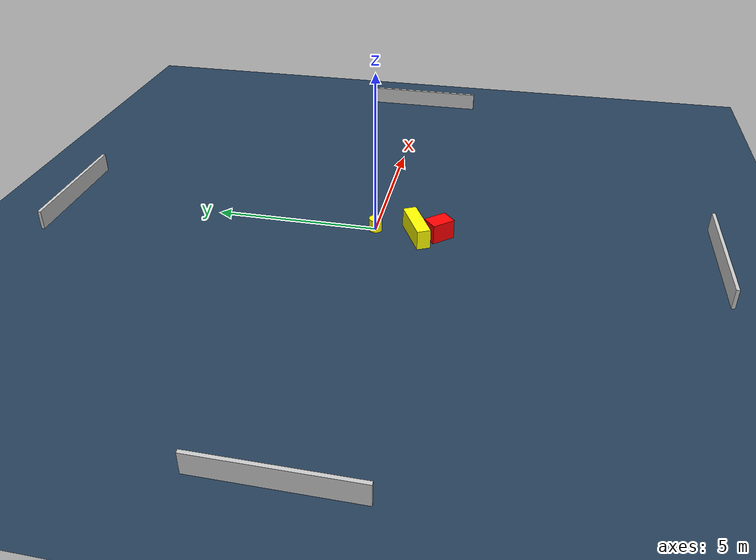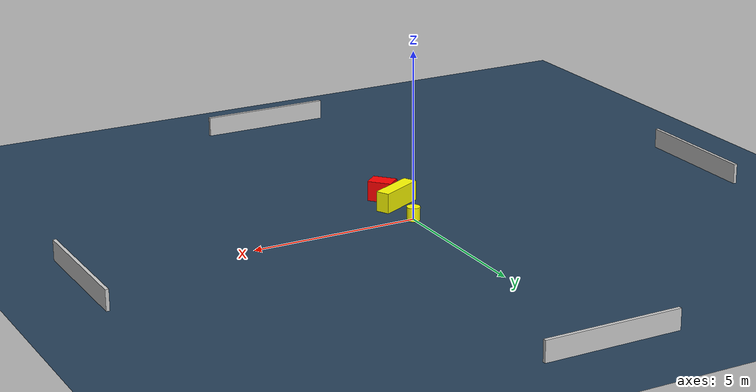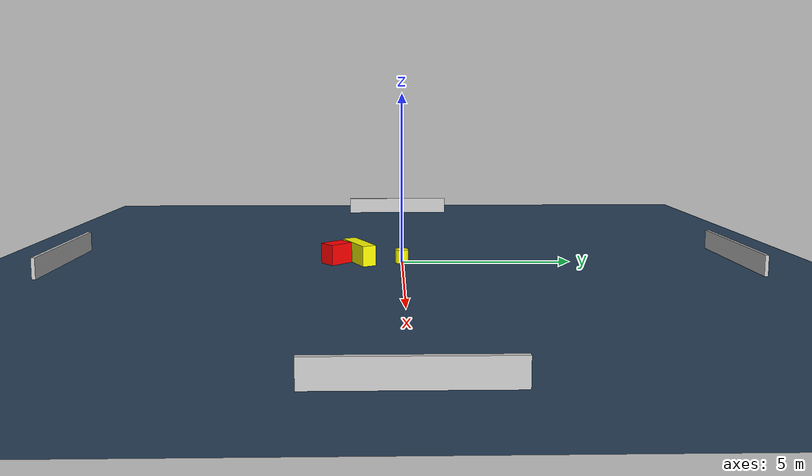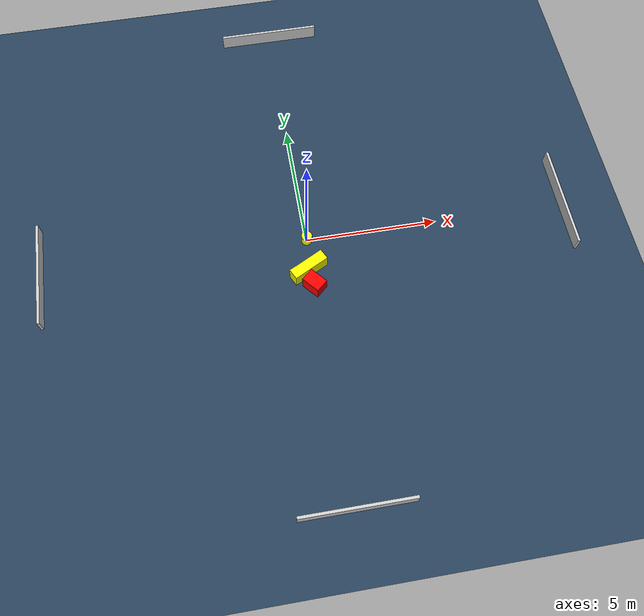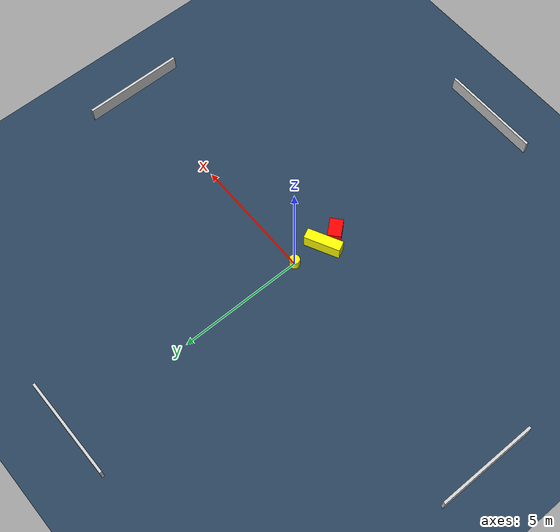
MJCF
<?xml version="1.0" ?>
<mujoco model="generated_environment">
  <option timestep="0.01" integrator="RK4" cone="elliptic"/>
  <default>
    <geom density="1"/>
  </default>
  <asset>
    <texture builtin="gradient" height="3072" name="skybox" rgb1="0.3 0.5 0.7" rgb2="0 0 0" type="skybox" width="512"/>
    <texture builtin="checker" height="300" name="groundplane" rgb1="0.2 0.3 0.4" rgb2="0.1 0.2 0.3" type="2d" width="300"/>
    <material name="groundplane" reflectance="0.2" texrepeat="5 5" texture="groundplane"/>
  </asset>
  <worldbody>
    <light dir="0 0 -1" directional="true" pos="0 0 1.5"/>
    <geom condim="3" friction="0.5 0.005 0.001" material="groundplane" name="floor" pos="0 0 0" size="0 0 0.05" type="plane"/>
    <body name="walls">
      <geom name="wall_1" condim="4" pos="-10.0 0.0 0.3" rgba="0.800000011920929 0.800000011920929 0.800000011920929 1.0" size="0.05 2.0 0.3" type="box"/>
      <geom name="wall_2" condim="4" pos="10.0 0.0 0.3" rgba="0.800000011920929 0.800000011920929 0.800000011920929 1.0" size="0.05 2.0 0.3" type="box"/>
      <geom name="wall_3" condim="4" pos="0.0 -10.0 0.3" rgba="0.800000011920929 0.800000011920929 0.800000011920929 1.0" size="2.0 0.05 0.3" type="box"/>
      <geom name="wall_4" condim="4" pos="0.0 10.0 0.3" rgba="0.800000011920929 0.800000011920929 0.800000011920929 1.0" size="2.0 0.05 0.3" type="box"/>
    </body>
    <body name="robot">
      <joint name="joint_x" type="slide" pos="0 0 0" axis="1 0 0"/>
      <joint name="joint_y" type="slide" pos="0 0 0" axis="0 1 0"/>
      <geom name="robot" type="cylinder" pos="0.0 0.0 0.2" size="0.2 0.2 0.0" mass="5.0" friction="1.0 0.005 0.0001" condim="4" rgba="1.0 1.0 0.0 1.0"/>
    </body>
    <body name="obstacle_1_movable">
      <geom name="obstacle_1_movable" condim="4" pos="-0.14084576273655033 -1.2760524748413051 0.3" euler="0 0 296.79179773878354" friction="0.0 0.005 0.001" rgba="1.0 1.0 0.0 1.0" size="0.20781200168330652 0.7126436097126845 0.3" type="box" mass="0.1"/>
      <joint type="free"/>
    </body>
    <body name="obstacle_2_static">
      <geom name="obstacle_2_static" condim="4" pos="-0.03078353544624898 -1.9419008962752629 0.3" euler="0 0 221.3280525620139" friction="0.0 0.005 0.001" rgba="1.0 0.0 0.0 1.0" size="0.2601982830254693 0.3651459532748499 0.3" type="box"/>
    </body>
  </worldbody>
  <actuator>
    <motor name="actuator_x" joint="joint_x" gear="1" ctrlrange="-1 1"/>
    <motor name="actuator_y" joint="joint_y" gear="1" ctrlrange="-1 1"/>
  </actuator>
</mujoco>
